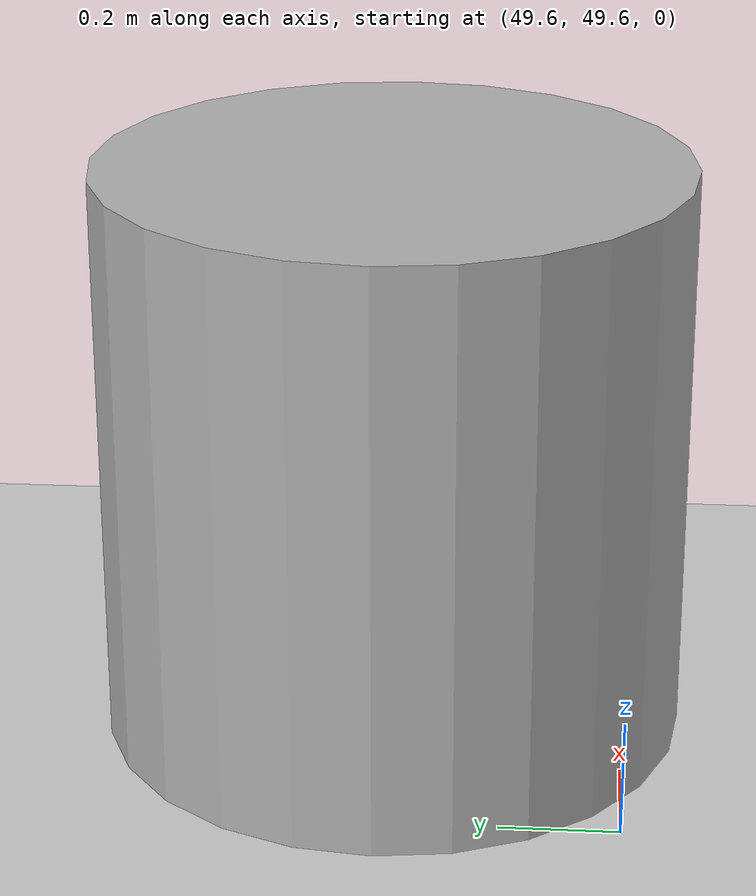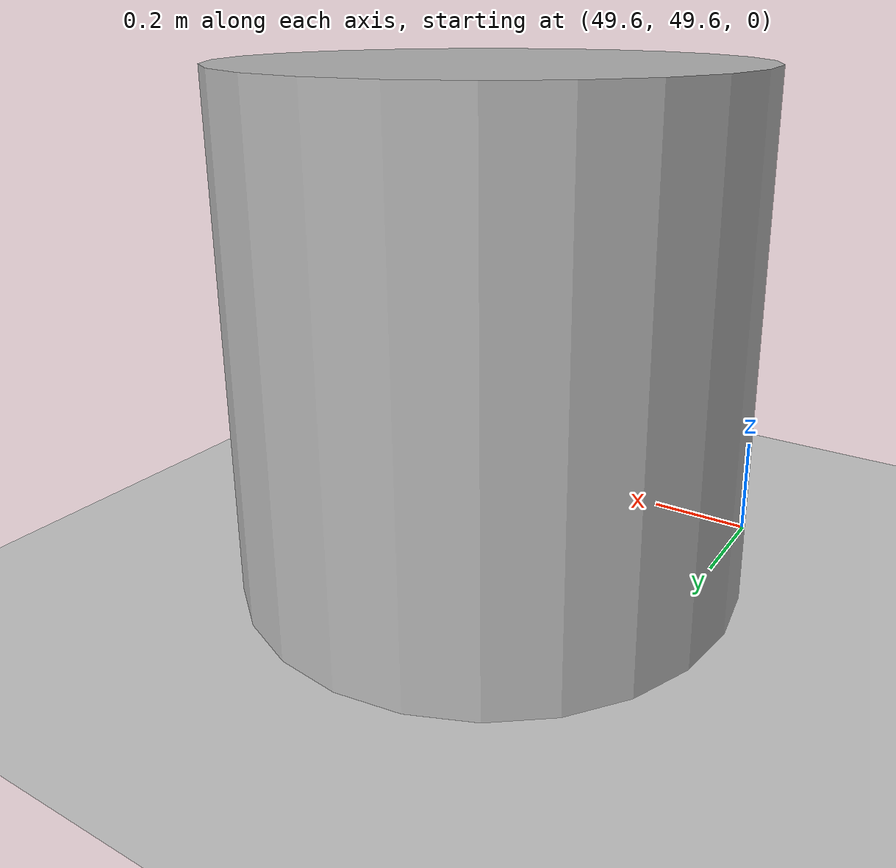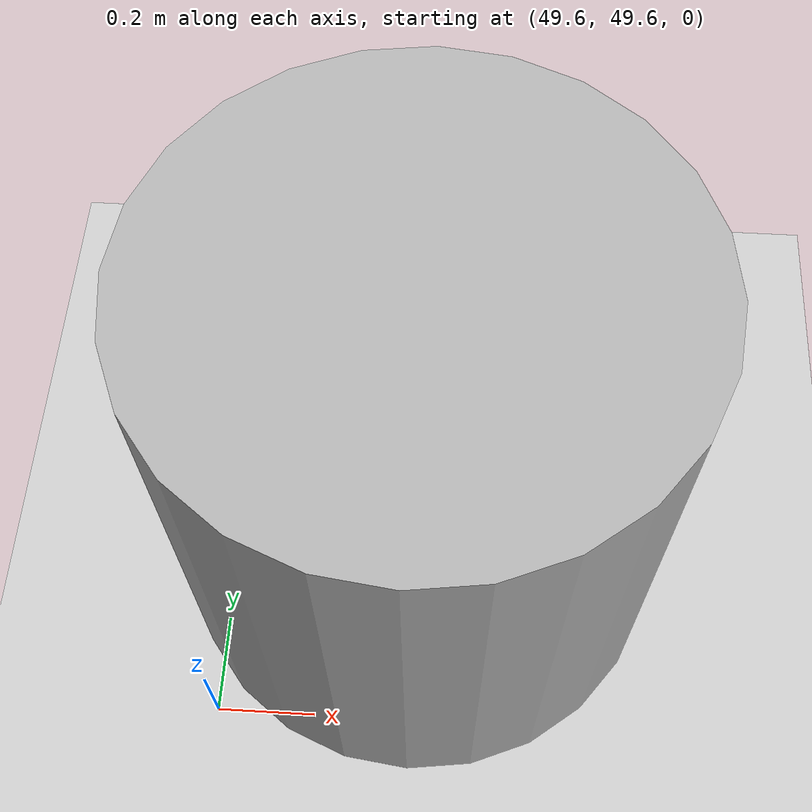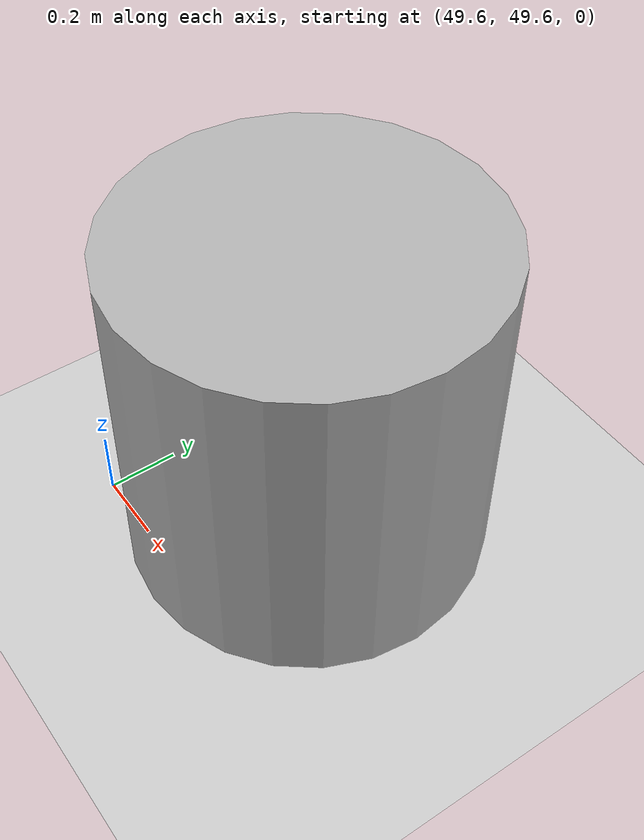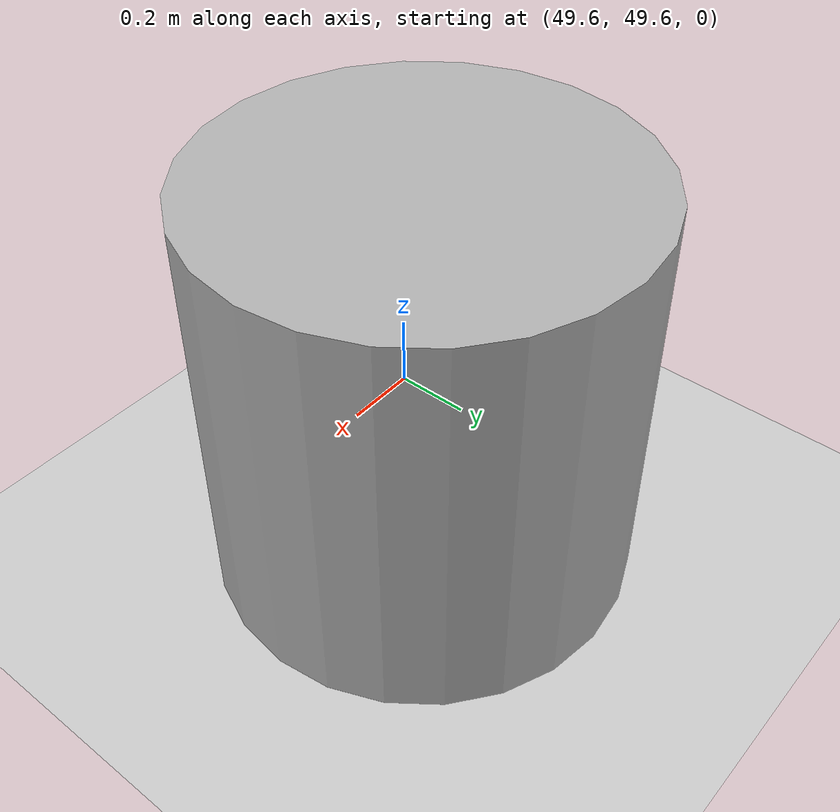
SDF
<?xml version="1.0"?>
<sdf version="1.9">
  <world name="default">
    <physics name="1ms" type="ignored">
      <max_step_size>0.001</max_step_size>
      <real_time_factor>1.0</real_time_factor>
      <real_time_update_rate>250</real_time_update_rate>
    </physics>

    <plugin filename="gz-sim-physics-system" name="gz::sim::systems::Physics"></plugin>
    <plugin filename="gz-sim-user-commands-system" name="gz::sim::systems::UserCommands"></plugin>
    <plugin filename="gz-sim-scene-broadcaster-system" name="gz::sim::systems::SceneBroadcaster"></plugin>
    <plugin filename="gz-sim-sensors-system" name="gz::sim::systems::Sensors">
      <render_engine>ogre2</render_engine>
    </plugin>

    <include>
      <uri>https://fuel.gazebosim.org/1.0/OpenRobotics/models/Ground Plane</uri>
    </include>

    <light type="directional" name="sun">
      <cast_shadows>true</cast_shadows>
      <pose>0 0 10 0 0 0</pose>
      <diffuse>0.8 0.8 0.8 1</diffuse>
      <specular>0.2 0.2 0.2 1</specular>
      <attenuation>
        <range>1000</range>
        <constant>0.9</constant>
        <linear>0.01</linear>
        <quadratic>0.001</quadratic>
      </attenuation>
      <direction>-0.5 0.1 -0.9</direction>
    </light>

    <include>
      <uri>model://maze1</uri>
    </include>

    <model name='crash_dummy'>
      <pose>50.0 50.0 0.5 0 -0 0</pose>
      <link name='link'>
        <inertial>
          <mass>1</mass>
          <inertia>
            <ixx>0.145833</ixx>
            <ixy>0</ixy>
            <ixz>0</ixz>
            <iyy>0.145833</iyy>
            <iyz>0</iyz>
            <izz>0.125</izz>
          </inertia>
          <pose>0 0 0 0 -0 0</pose>
        </inertial>
        <collision name='collision'>
          <geometry>
            <cylinder>
              <radius>0.5</radius>
              <length>1</length>
            </cylinder>
          </geometry>
          <max_contacts>10</max_contacts>
          <surface>
            <contact>
              <ode/>
            </contact>
            <bounce/>
            <friction>
              <torsional>
                <ode/>
              </torsional>
              <ode/>
            </friction>
          </surface>
        </collision>
        <visual name='visual'>
          <geometry>
            <cylinder>
              <radius>0.5</radius>
              <length>1</length>
            </cylinder>
          </geometry>
          <material>
            <ambient>0.5 0.5 0.5 1</ambient>
            <diffuse>0.7 0.7 0.7 1</diffuse>
            <specular>0.2 0.2 0.2 1</specular>
          </material>
        </visual>
        <self_collide>0</self_collide>
        <enable_wind>0</enable_wind>
        <kinematic>0</kinematic>
      </link>
    </model>

    <gui fullscreen='0'>
      <camera name='user_camera'>
        <pose>-30.7614 1.32089 33.8068 0 0.655644 0.025013</pose>
        <view_controller>orbit</view_controller>
        <projection_type>perspective</projection_type>
      </camera>
    </gui>

  </world>
</sdf>

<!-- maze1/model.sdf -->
<sdf version="1.4">
  <model name="maze1">
    <link name="link">
      <inertial>
        <mass>1000</mass>
        <inertia>
          <ixx>1000.0</ixx>
          <ixy>0.0</ixy>
          <ixz>0.0</ixz>
          <iyy>1000.0</iyy>
          <iyz>0.0</iyz>
          <izz>1000.0</izz>
        </inertia>
      </inertial>
      <collision name="collision">
        <pose>-51 30 0 0 0 0</pose>
        <geometry>
          <mesh>
            <uri>model://maze1/map.stl</uri>
          </mesh>
        </geometry>
      </collision>
      <visual name="visual">
        <pose>-51 30 0 0 0 0</pose>
        <geometry>
          <mesh>
            <uri>model://maze1/map.stl</uri>
          </mesh>
        </geometry>
      </visual>
    </link>
    <static>1</static>
  </model>
</sdf>
